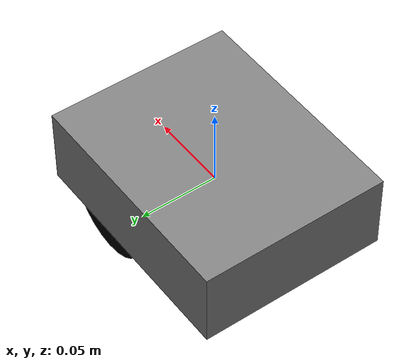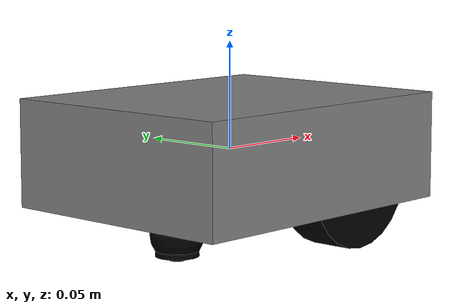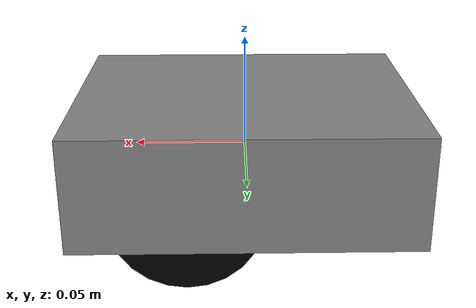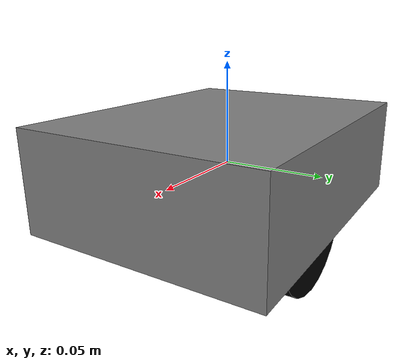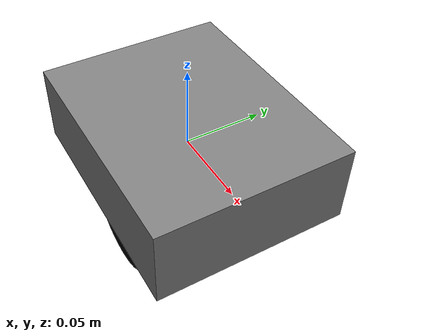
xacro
<?xml version="1.0"?>
<robot name="differential_robot" xmlns:xacro="http://www.ros.org/wiki/xacro">

    <xacro:include filename="differential_robot.urdf.xacro" />

    <ros2_control name="GazeboSystem" type="system">
        <hardware>
            <plugin>gazebo_ros2_control/GazeboSystem</plugin>
        </hardware>

        <joint name="joint_wheel_left">
            <command_interface name="velocity">
                <param name="min">-10.0</param>
                <param name="max">10.0</param>
            </command_interface>
            <state_interface name="velocity" />
            <state_interface name="position" />
        </joint>

        <joint name="joint_wheel_right">
            <command_interface name="velocity">
                <param name="min">-10.0</param>
                <param name="max">10.0</param>
            </command_interface>
            <state_interface name="velocity" />
            <state_interface name="position" />
        </joint>

        <joint name="caster_roll_joint">
            <state_interface name="position" />
            <state_interface name="velocity" />
        </joint>

        <joint name="caster_pitch_joint">
            <state_interface name="position" />
            <state_interface name="velocity" />
        </joint>

        <joint name="caster_mount_joint">
            <state_interface name="position" />
        </joint>
    </ros2_control>

    <gazebo>
        <plugin name="gazebo_ros2_control" filename="libgazebo_ros2_control.so">
            <parameters>$(find robot_description)/config/my_controllers.yaml</parameters>
        </plugin>
    </gazebo>

</robot>

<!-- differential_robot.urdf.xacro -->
<robot name="differential_robot" xmlns:xacro="http://www.ros.org/wiki/xacro">
  <!-- Parámetros básicos -->
  <xacro:property name="wheel_radius" value="0.0325"/>
  <xacro:property name="wheel_separation" value="0.095"/>

  <!-- Link principal (chasis en gris) -->
  <link name="base_link">
    <inertial>
      <origin xyz="0 0 0" rpy="0 0 0"/>
      <mass value="1.0"/>
      <inertia ixx="0.1" ixy="0.0" ixz="0.0" iyy="0.1" iyz="0.0" izz="0.1"/>
    </inertial>
    <visual>
      <origin xyz="0 0 0" rpy="0 0 0"/>
      <geometry>
        <box size="0.15 0.12 0.05"/>
      </geometry>
      <material name="gray">
        <color rgba="0.5 0.5 0.5 1"/>
      </material>
    </visual>
    <collision>
      <origin xyz="0 0 0" rpy="0 0 0"/>
      <geometry>
        <box size="0.15 0.12 0.05"/>
      </geometry>
    </collision>
  </link>

  <!-- Ruedas motrices (en negro) -->
  <link name="wheel_left_link">
    <inertial>
      <origin xyz="0 0 0" rpy="0 0 0"/>
      <mass value="0.05"/>
      <inertia ixx="0.01" ixy="0.0" ixz="0.0" iyy="0.01" iyz="0.0" izz="0.01"/>
    </inertial>
    <visual>
      <origin xyz="0 0 0" rpy="-1.5708 0 0"/>
      <geometry>
        <cylinder length="0.02" radius="${wheel_radius}"/>
      </geometry>
      <material name="black">
        <color rgba="0 0 0 1"/>
      </material>
    </visual>
    <collision>
      <origin xyz="0 0 0" rpy="-1.5708 0 0"/>
      <geometry>
        <cylinder length="0.02" radius="${wheel_radius}"/>
      </geometry>
    </collision>
  </link>
  <link name="wheel_right_link">
    <inertial>
      <origin xyz="0 0 0" rpy="0 0 0"/>
      <mass value="0.05"/>
      <inertia ixx="0.01" ixy="0.0" ixz="0.0" iyy="0.01" iyz="0.0" izz="0.01"/>
    </inertial>
    <visual>
      <origin xyz="0 0 0" rpy="-1.5708 0 0"/>
      <geometry>
        <cylinder length="0.02" radius="${wheel_radius}"/>
      </geometry>
      <material name="black">
        <color rgba="0 0 0 1"/>
      </material>
    </visual>
    <collision>
      <origin xyz="0 0 0" rpy="-1.5708 0 0"/>
      <geometry>
        <cylinder length="0.02" radius="${wheel_radius}"/>
      </geometry>
    </collision>
  </link>

  <!-- Caster de bola (en negro) -->
  <!-- 1) Montaje fijo -->
  <link name="caster_mount_link">
    <inertial>
      <origin xyz="0 0 0" rpy="0 0 0"/>
      <mass value="0.05"/>
      <inertia ixx="0.0001" ixy="0.0" ixz="0.0" iyy="0.0001" iyz="0.0" izz="0.0001"/>
    </inertial>
    <visual>
      <origin xyz="0 0 0" rpy="0 0 0"/>
      <geometry>
        <cylinder length="0.02" radius="0.01"/>
      </geometry>
      <material name="black">
        <color rgba="0 0 0 1"/>
      </material>
    </visual>
    <collision>
      <origin xyz="0 0 0" rpy="0 0 0"/>
      <geometry>
        <cylinder length="0.02" radius="0.01"/>
      </geometry>
    </collision>
  </link>
  <joint name="caster_mount_joint" type="fixed">
    <parent link="base_link"/>
    <child link="caster_mount_link"/>
    <origin xyz="-0.035 0 -0.035" rpy="0 0 0"/>
  </joint>

  <!-- 2) Eje de rotación roll (X) -->
  <link name="caster_roll_link">
    <inertial>
      <origin xyz="0 0 0" rpy="0 0 0"/>
      <mass value="0.1"/>
      <inertia ixx="0.0001" ixy="0.0" ixz="0.0" iyy="0.0001" iyz="0.0" izz="0.0001"/>
    </inertial>
    <visual>
      <origin xyz="0 0 0" rpy="0 0 0"/>
      <geometry>
        <cylinder length="0.02" radius="0.005"/>
      </geometry>
      <material name="black">
        <color rgba="0 0 0 1"/>
      </material>
    </visual>
    <collision>
      <origin xyz="0 0 0" rpy="0 0 0"/>
      <geometry>
        <cylinder length="0.02" radius="0.005"/>
      </geometry>
    </collision>
  </link>
  <joint name="caster_roll_joint" type="revolute">
    <parent link="caster_mount_link"/>
    <child link="caster_roll_link"/>
    <origin xyz="0 0 0" rpy="0 0 0"/>
    <axis xyz="1 0 0"/>
    <limit lower="-3.14159" upper="3.14159" effort="0" velocity="0"/>
    <dynamics damping="0.1" friction="0.1"/>
  </joint>

  <!-- 3) Eje de rotación pitch (Y) con la bola -->
  <link name="caster_ball_link">
    <inertial>
      <origin xyz="0 0 0" rpy="0 0 0"/>
      <mass value="0.1"/>
      <inertia ixx="0.0001" ixy="0.0" ixz="0.0" iyy="0.0001" iyz="0.0" izz="0.0001"/>
    </inertial>
    <visual>
      <origin xyz="0 0 0" rpy="0 0 0"/>
      <geometry>
        <sphere radius="0.0125"/>
      </geometry>
      <material name="black">
        <color rgba="0 0 0 1"/>
      </material>
    </visual>
    <collision>
      <origin xyz="0 0 0" rpy="0 0 0"/>
      <geometry>
        <sphere radius="0.0125"/>
      </geometry>
    </collision>
  </link>
  <joint name="caster_pitch_joint" type="revolute">
    <parent link="caster_roll_link"/>
    <child link="caster_ball_link"/>
    <origin xyz="0 0 0" rpy="0 0 0"/>
    <axis xyz="0 1 0"/>
    <limit lower="-3.14159" upper="3.14159" effort="0" velocity="0"/>
    <dynamics damping="0.1" friction="0.1"/>
  </joint>

  <!-- Joints de ruedas motrices -->
  <joint name="joint_wheel_left" type="continuous">
    <parent link="base_link"/>
    <child link="wheel_left_link"/>
    <origin xyz="0.025 ${-wheel_separation/2} -0.01" rpy="0 0 0"/>
    <axis xyz="0 1 0"/>
  </joint>
  <joint name="joint_wheel_right" type="continuous">
    <parent link="base_link"/>
    <child link="wheel_right_link"/>
    <origin xyz="0.025 ${wheel_separation/2} -0.01" rpy="0 0 0"/>
    <axis xyz="0 1 0"/>
  </joint>

  <!-- Transmissions. Creo que s epueden quitar -->
  <transmission name="trans_wheel_left">
    <type>transmission_interface/SimpleTransmission</type>
    <joint name="joint_wheel_left"/>
    <actuator name="motor_left"/>
  </transmission>
  <transmission name="trans_wheel_right">
    <type>transmission_interface/SimpleTransmission</type>
    <joint name="joint_wheel_right"/>
    <actuator name="motor_right"/>
  </transmission>

  <gazebo reference="base_link">
    <material>Gazebo/White</material>
  </gazebo>
  <gazebo reference="wheel_left_link">
    <material>Gazebo/Black</material>
  </gazebo>
  <gazebo reference="wheel_right_link">
    <material>Gazebo/Black</material>
  </gazebo>
  <gazebo reference="caster_mount_link">
    <material>Gazebo/Blue</material>
  </gazebo>
  <gazebo reference="caster_roll_link">
    <material>Gazebo/Blue</material>
  </gazebo>
  <gazebo reference="caster_ball_link">
    <material>Gazebo/Blue</material>
  </gazebo>

</robot>
